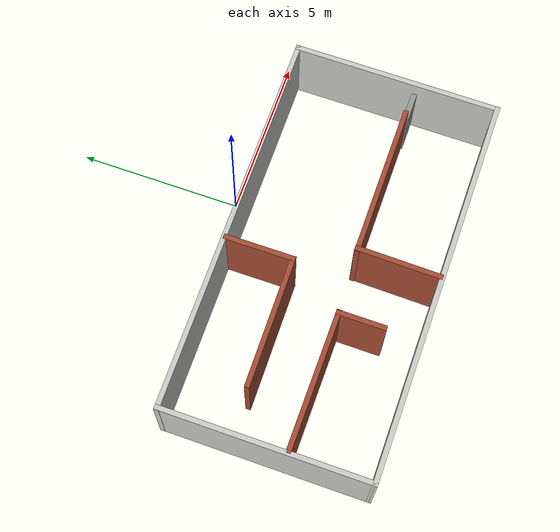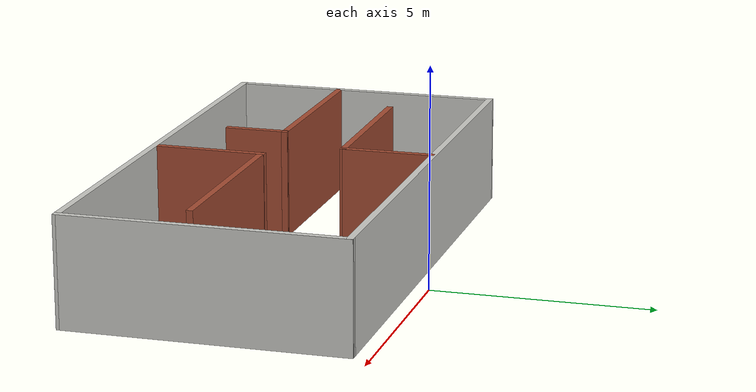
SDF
<?xml version='1.0'?>
<sdf version='1.7'>
  <model name='room1'>
    <pose>-1.36 -3.38256 0 0 -0 0</pose>
    <link name='Door_0'>
      <collision name='Door_0_Collision'>
        <geometry>
          <box>
            <size>0.9 0.17 2</size>
          </box>
        </geometry>
        <pose>0 0 1 0 -0 0</pose>
      </collision>
      <visual name='Door_0_Visual'>
        <pose>0 0 1 0 -0 0</pose>
        <geometry>
          <box>
            <size>0.9 0.17 2</size>
          </box>
        </geometry>
        <material>
          <script>
            <uri>file://media/materials/scripts/gazebo.material</uri>
            <name>Gazebo/Grey</name>
          </script>
        </material>
      </visual>
      <pose>5.41 -0.79744 0 0 -0 0</pose>
    </link>
    <link name='Wall_0'>
      <collision name='Wall_0_Collision'>
        <geometry>
          <box>
            <size>6.42001 0.15 2.5</size>
          </box>
        </geometry>
        <pose>0 0 1.25 0 -0 0</pose>
      </collision>
      <visual name='Wall_0_Visual'>
        <pose>0 0 1.25 0 -0 0</pose>
        <geometry>
          <box>
            <size>6.42001 0.15 2.5</size>
          </box>
        </geometry>
        <material>
          <script>
            <uri>file://media/materials/scripts/gazebo.material</uri>
            <name>Gazebo/CeilingTiled</name>
          </script>
          <ambient>1 1 1 1</ambient>
        </material>
        <meta>
          <layer>0</layer>
        </meta>
      </visual>
      <pose>-5.925 -0.17244 0 0 -0 -1.57239</pose>
    </link>
    <link name='Wall_1'>
      <collision name='Wall_1_Collision'>
        <geometry>
          <box>
            <size>12 0.15 2.5</size>
          </box>
        </geometry>
        <pose>0 0 1.25 0 -0 0</pose>
      </collision>
      <visual name='Wall_1_Visual'>
        <pose>0 0 1.25 0 -0 0</pose>
        <geometry>
          <box>
            <size>12 0.15 2.5</size>
          </box>
        </geometry>
        <material>
          <script>
            <uri>file://media/materials/scripts/gazebo.material</uri>
            <name>Gazebo/CeilingTiled</name>
          </script>
          <ambient>1 1 1 1</ambient>
        </material>
        <meta>
          <layer>0</layer>
        </meta>
      </visual>
      <pose>-0.005 -3.30744 0 0 -0 0</pose>
    </link>
    <link name='Wall_11'>
      <collision name='Wall_11_Collision'>
        <geometry>
          <box>
            <size>2.64032 0.15 2.5</size>
          </box>
        </geometry>
        <pose>0 0 1.25 0 -0 0</pose>
      </collision>
      <visual name='Wall_11_Visual'>
        <pose>0 0 1.25 0 -0 0</pose>
        <geometry>
          <box>
            <size>2.64032 0.15 2.5</size>
          </box>
        </geometry>
        <material>
          <script>
            <uri>file://media/materials/scripts/gazebo.material</uri>
            <name>Gazebo/Bricks</name>
          </script>
          <ambient>1 1 1 1</ambient>
        </material>
        <meta>
          <layer>0</layer>
        </meta>
      </visual>
      <pose>0.3 -2.00244 0 0 -0 -1.58686</pose>
    </link>
    <link name='Wall_13'>
      <collision name='Wall_13_Collision'>
        <geometry>
          <box>
            <size>4.75 0.15 2.5</size>
          </box>
        </geometry>
        <pose>0 0 1.25 0 -0 0</pose>
      </collision>
      <visual name='Wall_13_Visual'>
        <pose>0 0 1.25 0 -0 0</pose>
        <geometry>
          <box>
            <size>4.75 0.15 2.5</size>
          </box>
        </geometry>
        <material>
          <script>
            <uri>file://media/materials/scripts/gazebo.material</uri>
            <name>Gazebo/Bricks</name>
          </script>
          <ambient>1 1 1 1</ambient>
        </material>
        <meta>
          <layer>0</layer>
        </meta>
      </visual>
      <pose>2.6 -0.76744 0 0 -0 0</pose>
    </link>
    <link name='Wall_2'>
      <collision name='Wall_2_Collision'>
        <geometry>
          <box>
            <size>6.42001 0.15 2.5</size>
          </box>
        </geometry>
        <pose>0 0 1.25 0 -0 0</pose>
      </collision>
      <visual name='Wall_2_Visual'>
        <pose>0 0 1.25 0 -0 0</pose>
        <geometry>
          <box>
            <size>6.42001 0.15 2.5</size>
          </box>
        </geometry>
        <material>
          <script>
            <uri>file://media/materials/scripts/gazebo.material</uri>
            <name>Gazebo/CeilingTiled</name>
          </script>
          <ambient>1 1 1 1</ambient>
        </material>
        <meta>
          <layer>0</layer>
        </meta>
      </visual>
      <pose>5.925 -0.17244 0 0 -0 1.5692</pose>
    </link>
    <link name='Wall_3'>
      <collision name='Wall_3_Collision'>
        <geometry>
          <box>
            <size>12 0.15 2.5</size>
          </box>
        </geometry>
        <pose>0 0 1.25 0 -0 0</pose>
      </collision>
      <visual name='Wall_3_Visual'>
        <pose>0 0 1.25 0 -0 0</pose>
        <geometry>
          <box>
            <size>12 0.15 2.5</size>
          </box>
        </geometry>
        <material>
          <script>
            <uri>file://media/materials/scripts/gazebo.material</uri>
            <name>Gazebo/CeilingTiled</name>
          </script>
          <ambient>1 1 1 1</ambient>
        </material>
        <meta>
          <layer>0</layer>
        </meta>
      </visual>
      <pose>-0.005 2.96256 0 0 -0 3.14159</pose>
    </link>
    <link name='Wall_5'>
      <collision name='Wall_5_Collision'>
        <geometry>
          <box>
            <size>2.17002 0.15 2.5</size>
          </box>
        </geometry>
        <pose>0 0 1.25 0 -0 0</pose>
      </collision>
      <visual name='Wall_5_Visual'>
        <pose>0 0 1.25 0 -0 0</pose>
        <geometry>
          <box>
            <size>2.17002 0.15 2.5</size>
          </box>
        </geometry>
        <material>
          <script>
            <uri>file://media/materials/scripts/gazebo.material</uri>
            <name>Gazebo/Bricks</name>
          </script>
          <ambient>1 1 1 1</ambient>
        </material>
        <meta>
          <layer>0</layer>
        </meta>
      </visual>
      <pose>-0.595 1.89256 0 0 -0 -1.56585</pose>
    </link>
    <link name='Wall_6'>
      <collision name='Wall_6_Collision'>
        <geometry>
          <box>
            <size>4.07012 0.15 2.5</size>
          </box>
        </geometry>
        <pose>0 0 1.25 0 -0 0</pose>
      </collision>
      <visual name='Wall_6_Visual'>
        <pose>0 0 1.25 0 -0 0</pose>
        <geometry>
          <box>
            <size>4.07012 0.15 2.5</size>
          </box>
        </geometry>
        <material>
          <script>
            <uri>file://media/materials/scripts/gazebo.material</uri>
            <name>Gazebo/Bricks</name>
          </script>
          <ambient>1 1 1 1</ambient>
        </material>
        <meta>
          <layer>0</layer>
        </meta>
      </visual>
      <pose>-2.55 0.85756 0 0 -0 -3.13394</pose>
    </link>
    <link name='Wall_8'>
      <collision name='Wall_8_Collision'>
        <geometry>
          <box>
            <size>4.32011 0.15 2.5</size>
          </box>
        </geometry>
        <pose>0 0 1.25 0 -0 0</pose>
      </collision>
      <visual name='Wall_8_Visual'>
        <pose>0 0 1.25 0 -0 0</pose>
        <geometry>
          <box>
            <size>4.32011 0.15 2.5</size>
          </box>
        </geometry>
        <material>
          <script>
            <uri>file://media/materials/scripts/gazebo.material</uri>
            <name>Gazebo/Bricks</name>
          </script>
          <ambient>1 1 1 1</ambient>
        </material>
        <meta>
          <layer>0</layer>
        </meta>
      </visual>
      <pose>-3.765 -0.84244 0 0 -0 -0.007194</pose>
    </link>
    <link name='Wall_9'>
      <collision name='Wall_9_Collision'>
        <geometry>
          <box>
            <size>1.5 0.15 2.5</size>
          </box>
        </geometry>
        <pose>0 0 1.25 0 -0 0</pose>
      </collision>
      <visual name='Wall_9_Visual'>
        <pose>0 0 1.25 0 -0 0</pose>
        <geometry>
          <box>
            <size>1.5 0.15 2.5</size>
          </box>
        </geometry>
        <material>
          <script>
            <uri>file://media/materials/scripts/gazebo.material</uri>
            <name>Gazebo/Bricks</name>
          </script>
          <ambient>1 1 1 1</ambient>
        </material>
        <meta>
          <layer>0</layer>
        </meta>
      </visual>
      <pose>-1.69 -1.53244 0 0 -0 -1.5708</pose>
    </link>
    <static>1</static>
  </model>
</sdf>
